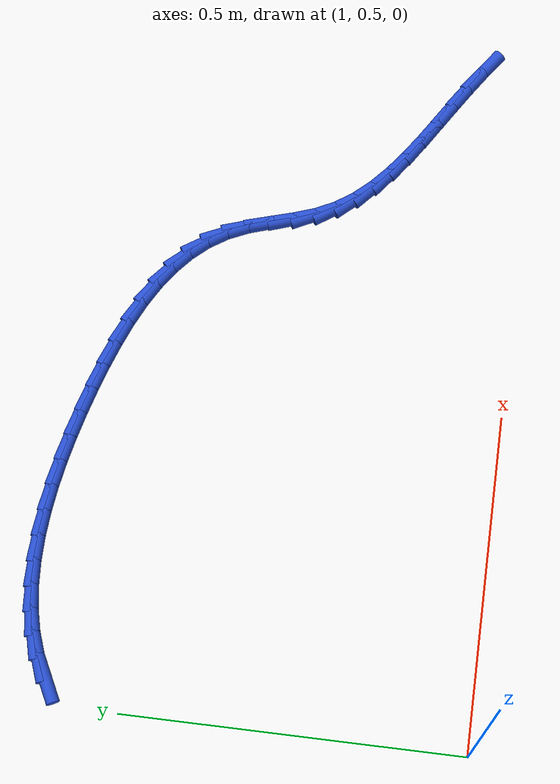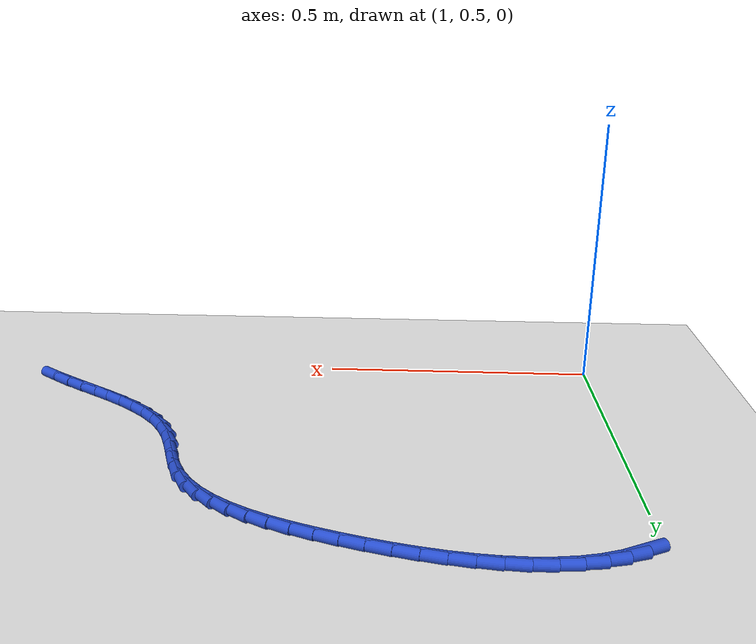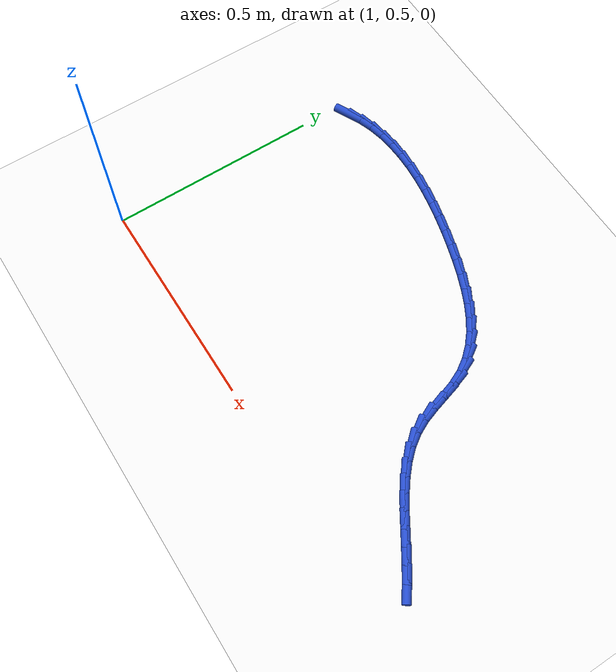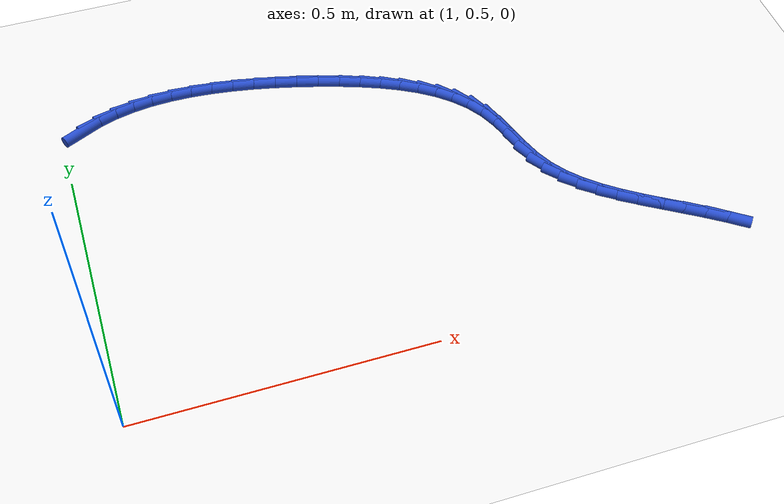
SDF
<sdf version="1.6">
 <world name="default">
  <model name="ground_plane">
   <static>1</static>
   <link name="link">
    <collision name="collision">
     <geometry><plane><normal>0 0 1</normal><size>100 100</size></plane></geometry>
     <surface><friction><ode><mu>100</mu><mu2>50</mu2></ode></friction></surface>
    </collision>
    <visual name="visual">
     <cast_shadows>0</cast_shadows>
     <geometry><plane><normal>0 0 1</normal><size>100 100</size></plane></geometry>
     <material>
      <script><uri>file://media/materials/scripts/gazebo.material</uri><name>Gazebo/WhiteGlow</name></script>
     </material>
    </visual>
   </link>
  </model>
  <model name="line">
   <link name="link_52">
    <pose>1.0387273356943583 1.1097525708473537 0.01 0 1.57 0.454066939665086</pose>
    <collision name="collision">
     <geometry><cylinder><radius>0.01</radius><length>0.08</length></cylinder></geometry>
    </collision>
    <visual name="visual">
     <material>
      <script><name>Gazebo/Blue</name><uri>file://media/materials/scripts/gazebo.material</uri></script>
     </material>
     <geometry><cylinder><radius>0.01</radius><length>0.08</length></cylinder></geometry>
    </visual>
   </link>
   <link name="link_53">
    <pose>1.0682321107557462 1.1241532878704417 0.01 0 1.57 0.3333663685246123</pose>
    <collision name="collision">
     <geometry><cylinder><radius>0.01</radius><length>0.08</length></cylinder></geometry>
    </collision>
    <visual name="visual">
     <material>
      <script><name>Gazebo/Blue</name><uri>file://media/materials/scripts/gazebo.material</uri></script>
     </material>
     <geometry><cylinder><radius>0.01</radius><length>0.08</length></cylinder></geometry>
    </visual>
   </link>
   <link name="link_54">
    <pose>1.099677207550022 1.1350424276009448 0.01 0 1.57 0.22589889558265125</pose>
    <collision name="collision">
     <geometry><cylinder><radius>0.01</radius><length>0.08</length></cylinder></geometry>
    </collision>
    <visual name="visual">
     <material>
      <script><name>Gazebo/Blue</name><uri>file://media/materials/scripts/gazebo.material</uri></script>
     </material>
     <geometry><cylinder><radius>0.01</radius><length>0.08</length></cylinder></geometry>
    </visual>
   </link>
   <link name="link_55">
    <pose>1.1328249305836235 1.1426604886343 0.01 0 1.57 0.1317696983734423</pose>
    <collision name="collision">
     <geometry><cylinder><radius>0.01</radius><length>0.08</length></cylinder></geometry>
    </collision>
    <visual name="visual">
     <material>
      <script><name>Gazebo/Blue</name><uri>file://media/materials/scripts/gazebo.material</uri></script>
     </material>
     <geometry><cylinder><radius>0.01</radius><length>0.08</length></cylinder></geometry>
    </visual>
   </link>
   <link name="link_56">
    <pose>1.1674375843629894 1.1472479695659443 0.01 0 1.57 0.05010882739480579</pose>
    <collision name="collision">
     <geometry><cylinder><radius>0.01</radius><length>0.08</length></cylinder></geometry>
    </collision>
    <visual name="visual">
     <material>
      <script><name>Gazebo/Blue</name><uri>file://media/materials/scripts/gazebo.material</uri></script>
     </material>
     <geometry><cylinder><radius>0.01</radius><length>0.08</length></cylinder></geometry>
    </visual>
   </link>
   <link name="link_57">
    <pose>1.2032774733945566 1.1490453689913158 0.01 0 1.57 -0.02042059715724036</pose>
    <collision name="collision">
     <geometry><cylinder><radius>0.01</radius><length>0.08</length></cylinder></geometry>
    </collision>
    <visual name="visual">
     <material>
      <script><name>Gazebo/Blue</name><uri>file://media/materials/scripts/gazebo.material</uri></script>
     </material>
     <geometry><cylinder><radius>0.01</radius><length>0.08</length></cylinder></geometry>
    </visual>
   </link>
   <link name="link_58">
    <pose>1.240106902184763 1.148293185505851 0.01 0 1.57 -0.08127781698062835</pose>
    <collision name="collision">
     <geometry><cylinder><radius>0.01</radius><length>0.08</length></cylinder></geometry>
    </collision>
    <visual name="visual">
     <material>
      <script><name>Gazebo/Blue</name><uri>file://media/materials/scripts/gazebo.material</uri></script>
     </material>
     <geometry><cylinder><radius>0.01</radius><length>0.08</length></cylinder></geometry>
    </visual>
   </link>
   <link name="link_59">
    <pose>1.2776881752400464 1.1452319177049863 0.01 0 1.57 -0.13385283949703533</pose>
    <collision name="collision">
     <geometry><cylinder><radius>0.01</radius><length>0.08</length></cylinder></geometry>
    </collision>
    <visual name="visual">
     <material>
      <script><name>Gazebo/Blue</name><uri>file://media/materials/scripts/gazebo.material</uri></script>
     </material>
     <geometry><cylinder><radius>0.01</radius><length>0.08</length></cylinder></geometry>
    </visual>
   </link>
   <link name="link_60">
    <pose>1.315783597066845 1.1401020641841608 0.01 0 1.57 -0.17938010526347833</pose>
    <collision name="collision">
     <geometry><cylinder><radius>0.01</radius><length>0.08</length></cylinder></geometry>
    </collision>
    <visual name="visual">
     <material>
      <script><name>Gazebo/Blue</name><uri>file://media/materials/scripts/gazebo.material</uri></script>
     </material>
     <geometry><cylinder><radius>0.01</radius><length>0.08</length></cylinder></geometry>
    </visual>
   </link>
   <link name="link_61">
    <pose>1.354155472171596 1.1331441235388107 0.01 0 1.57 -0.21891288198471182</pose>
    <collision name="collision">
     <geometry><cylinder><radius>0.01</radius><length>0.08</length></cylinder></geometry>
    </collision>
    <visual name="visual">
     <material>
      <script><name>Gazebo/Blue</name><uri>file://media/materials/scripts/gazebo.material</uri></script>
     </material>
     <geometry><cylinder><radius>0.01</radius><length>0.08</length></cylinder></geometry>
    </visual>
   </link>
   <link name="link_62">
    <pose>1.392566105060738 1.1245985943643735 0.01 0 1.57 -0.25332789926904314</pose>
    <collision name="collision">
     <geometry><cylinder><radius>0.01</radius><length>0.08</length></cylinder></geometry>
    </collision>
    <visual name="visual">
     <material>
      <script><name>Gazebo/Blue</name><uri>file://media/materials/scripts/gazebo.material</uri></script>
     </material>
     <geometry><cylinder><radius>0.01</radius><length>0.08</length></cylinder></geometry>
    </visual>
   </link>
   <link name="link_63">
    <pose>1.430777800240709 1.1147059752562862 0.01 0 1.57 -0.28334231485676403</pose>
    <collision name="collision">
     <geometry><cylinder><radius>0.01</radius><length>0.08</length></cylinder></geometry>
    </collision>
    <visual name="visual">
     <material>
      <script><name>Gazebo/Blue</name><uri>file://media/materials/scripts/gazebo.material</uri></script>
     </material>
     <geometry><cylinder><radius>0.01</radius><length>0.08</length></cylinder></geometry>
    </visual>
   </link>
   <link name="link_64">
    <pose>1.4685528622179453 1.1037067648099859 0.01 0 1.57 -0.3106474674529518</pose>
    <collision name="collision">
     <geometry><cylinder><radius>0.01</radius><length>0.08</length></cylinder></geometry>
    </collision>
    <visual name="visual">
     <material>
      <script><name>Gazebo/Blue</name><uri>file://media/materials/scripts/gazebo.material</uri></script>
     </material>
     <geometry><cylinder><radius>0.01</radius><length>0.08</length></cylinder></geometry>
    </visual>
   </link>
   <link name="link_65">
    <pose>1.5056407255639963 1.091800019409108 0.01 0 1.57 -0.34435414498594497</pose>
    <collision name="collision">
     <geometry><cylinder><radius>0.01</radius><length>0.08</length></cylinder></geometry>
    </collision>
    <visual name="visual">
     <material>
      <script><name>Gazebo/Blue</name><uri>file://media/materials/scripts/gazebo.material</uri></script>
     </material>
     <geometry><cylinder><radius>0.01</radius><length>0.08</length></cylinder></geometry>
    </visual>
   </link>
   <link name="link_66">
    <pose>1.541693088263599 1.078870075870632 0.01 0 1.57 -0.38953016940054946</pose>
    <collision name="collision">
     <geometry><cylinder><radius>0.01</radius><length>0.08</length></cylinder></geometry>
    </collision>
    <visual name="visual">
     <material>
      <script><name>Gazebo/Blue</name><uri>file://media/materials/scripts/gazebo.material</uri></script>
     </material>
     <geometry><cylinder><radius>0.01</radius><length>0.08</length></cylinder></geometry>
    </visual>
   </link>
   <link name="link_67">
    <pose>1.5763167959476656 1.0646568428723928 0.01 0 1.57 -0.4478314333096888</pose>
    <collision name="collision">
     <geometry><cylinder><radius>0.01</radius><length>0.08</length></cylinder></geometry>
    </collision>
    <visual name="visual">
     <material>
      <script><name>Gazebo/Blue</name><uri>file://media/materials/scripts/gazebo.material</uri></script>
     </material>
     <geometry><cylinder><radius>0.01</radius><length>0.08</length></cylinder></geometry>
    </visual>
   </link>
   <link name="link_68">
    <pose>1.6091184592589205 1.0488994724116132 0.01 0 1.57 -0.5212265292254914</pose>
    <collision name="collision">
     <geometry><cylinder><radius>0.01</radius><length>0.08</length></cylinder></geometry>
    </collision>
    <visual name="visual">
     <material>
      <script><name>Gazebo/Blue</name><uri>file://media/materials/scripts/gazebo.material</uri></script>
     </material>
     <geometry><cylinder><radius>0.01</radius><length>0.08</length></cylinder></geometry>
    </visual>
   </link>
   <link name="link_69">
    <pose>1.6397046888400895 1.0313371164855163 0.01 0 1.57 -0.6117808025968408</pose>
    <collision name="collision">
     <geometry><cylinder><radius>0.01</radius><length>0.08</length></cylinder></geometry>
    </collision>
    <visual name="visual">
     <material>
      <script><name>Gazebo/Blue</name><uri>file://media/materials/scripts/gazebo.material</uri></script>
     </material>
     <geometry><cylinder><radius>0.01</radius><length>0.08</length></cylinder></geometry>
    </visual>
   </link>
   <link name="link_70">
    <pose>1.6676820953338973 1.0117089270913258 0.01 0 1.57 -0.7211288401781878</pose>
    <collision name="collision">
     <geometry><cylinder><radius>0.01</radius><length>0.08</length></cylinder></geometry>
    </collision>
    <visual name="visual">
     <material>
      <script><name>Gazebo/Blue</name><uri>file://media/materials/scripts/gazebo.material</uri></script>
     </material>
     <geometry><cylinder><radius>0.01</radius><length>0.08</length></cylinder></geometry>
    </visual>
   </link>
   <link name="link_71">
    <pose>1.6926572893830705 0.9897540562262651 0.01 0 1.57 -0.8495485298238307</pose>
    <collision name="collision">
     <geometry><cylinder><radius>0.01</radius><length>0.08</length></cylinder></geometry>
    </collision>
    <visual name="visual">
     <material>
      <script><name>Gazebo/Blue</name><uri>file://media/materials/scripts/gazebo.material</uri></script>
     </material>
     <geometry><cylinder><radius>0.01</radius><length>0.08</length></cylinder></geometry>
    </visual>
   </link>
   <link name="link_72">
    <pose>1.7142368816303333 0.9652116558875574 0.01 0 1.57 -0.9947652110757751</pose>
    <collision name="collision">
     <geometry><cylinder><radius>0.01</radius><length>0.08</length></cylinder></geometry>
    </collision>
    <visual name="visual">
     <material>
      <script><name>Gazebo/Blue</name><uri>file://media/materials/scripts/gazebo.material</uri></script>
     </material>
     <geometry><cylinder><radius>0.01</radius><length>0.08</length></cylinder></geometry>
    </visual>
   </link>
   <link name="link_73">
    <pose>1.7320274827184117 0.9378208780724258 0.01 0 1.57 -1.1483590192458624</pose>
    <collision name="collision">
     <geometry><cylinder><radius>0.01</radius><length>0.08</length></cylinder></geometry>
    </collision>
    <visual name="visual">
     <material>
      <script><name>Gazebo/Blue</name><uri>file://media/materials/scripts/gazebo.material</uri></script>
     </material>
     <geometry><cylinder><radius>0.01</radius><length>0.08</length></cylinder></geometry>
    </visual>
   </link>
   <link name="link_74">
    <pose>1.7457121820063908 0.9073765479667028 0.01 0 1.57 -1.2571825370830179</pose>
    <collision name="collision">
     <geometry><cylinder><radius>0.01</radius><length>0.08</length></cylinder></geometry>
    </collision>
    <visual name="visual">
     <material>
      <script><name>Gazebo/Blue</name><uri>file://media/materials/scripts/gazebo.material</uri></script>
     </material>
     <geometry><cylinder><radius>0.01</radius><length>0.08</length></cylinder></geometry>
    </visual>
   </link>
   <link name="link_75">
    <pose>1.756323955020114 0.8746561493407086 0.01 0 1.57 -1.2872214413375318</pose>
    <collision name="collision">
     <geometry><cylinder><radius>0.01</radius><length>0.08</length></cylinder></geometry>
    </collision>
    <visual name="visual">
     <material>
      <script><name>Gazebo/Blue</name><uri>file://media/materials/scripts/gazebo.material</uri></script>
     </material>
     <geometry><cylinder><radius>0.01</radius><length>0.08</length></cylinder></geometry>
    </visual>
   </link>
   <link name="link_76">
    <pose>1.766051226817946 0.8412782831122939 0.01 0 1.57 -1.2415079099328132</pose>
    <collision name="collision">
     <geometry><cylinder><radius>0.01</radius><length>0.08</length></cylinder></geometry>
    </collision>
    <visual name="visual">
     <material>
      <script><name>Gazebo/Blue</name><uri>file://media/materials/scripts/gazebo.material</uri></script>
     </material>
     <geometry><cylinder><radius>0.01</radius><length>0.08</length></cylinder></geometry>
    </visual>
   </link>
   <link name="link_77">
    <pose>1.7771197187282757 0.8088887002663409 0.01 0 1.57 -1.1185983959548333</pose>
    <collision name="collision">
     <geometry><cylinder><radius>0.01</radius><length>0.08</length></cylinder></geometry>
    </collision>
    <visual name="visual">
     <material>
      <script><name>Gazebo/Blue</name><uri>file://media/materials/scripts/gazebo.material</uri></script>
     </material>
     <geometry><cylinder><radius>0.01</radius><length>0.08</length></cylinder></geometry>
    </visual>
   </link>
   <link name="link_78">
    <pose>1.7916231754490182 0.7790319903389183 0.01 0 1.57 -0.9710162792018229</pose>
    <collision name="collision">
     <geometry><cylinder><radius>0.01</radius><length>0.08</length></cylinder></geometry>
    </collision>
    <visual name="visual">
     <material>
      <script><name>Gazebo/Blue</name><uri>file://media/materials/scripts/gazebo.material</uri></script>
     </material>
     <geometry><cylinder><radius>0.01</radius><length>0.08</length></cylinder></geometry>
    </visual>
   </link>
   <link name="link_79">
    <pose>1.8100780977818884 0.75204376914783 0.01 0 1.57 -0.8433460362601803</pose>
    <collision name="collision">
     <geometry><cylinder><radius>0.01</radius><length>0.08</length></cylinder></geometry>
    </collision>
    <visual name="visual">
     <material>
      <script><name>Gazebo/Blue</name><uri>file://media/materials/scripts/gazebo.material</uri></script>
     </material>
     <geometry><cylinder><radius>0.01</radius><length>0.08</length></cylinder></geometry>
    </visual>
   </link>
   <link name="link_80">
    <pose>1.8319626048095448 0.7274637222106344 0.01 0 1.57 -0.7405579033495228</pose>
    <collision name="collision">
     <geometry><cylinder><radius>0.01</radius><length>0.08</length></cylinder></geometry>
    </collision>
    <visual name="visual">
     <material>
      <script><name>Gazebo/Blue</name><uri>file://media/materials/scripts/gazebo.material</uri></script>
     </material>
     <geometry><cylinder><radius>0.01</radius><length>0.08</length></cylinder></geometry>
    </visual>
   </link>
   <link name="link_81">
    <pose>1.8567365500613018 0.7048175343098104 0.01 0 1.57 -0.6631254928812808</pose>
    <collision name="collision">
     <geometry><cylinder><radius>0.01</radius><length>0.08</length></cylinder></geometry>
    </collision>
    <visual name="visual">
     <material>
      <script><name>Gazebo/Blue</name><uri>file://media/materials/scripts/gazebo.material</uri></script>
     </material>
     <geometry><cylinder><radius>0.01</radius><length>0.08</length></cylinder></geometry>
    </visual>
   </link>
   <link name="link_82">
    <pose>1.8838597870664713 0.683630890227836 0.01 0 1.57 -0.6095360855156553</pose>
    <collision name="collision">
     <geometry><cylinder><radius>0.01</radius><length>0.08</length></cylinder></geometry>
    </collision>
    <visual name="visual">
     <material>
      <script><name>Gazebo/Blue</name><uri>file://media/materials/scripts/gazebo.material</uri></script>
     </material>
     <geometry><cylinder><radius>0.01</radius><length>0.08</length></cylinder></geometry>
    </visual>
   </link>
   <link name="link_83">
    <pose>1.9127921693543666 0.6634294747471904 0.01 0 1.57 -0.5777613614315319</pose>
    <collision name="collision">
     <geometry><cylinder><radius>0.01</radius><length>0.08</length></cylinder></geometry>
    </collision>
    <visual name="visual">
     <material>
      <script><name>Gazebo/Blue</name><uri>file://media/materials/scripts/gazebo.material</uri></script>
     </material>
     <geometry><cylinder><radius>0.01</radius><length>0.08</length></cylinder></geometry>
    </visual>
   </link>
   <link name="link_84">
    <pose>1.9429935504542992 0.6437389726503521 0.01 0 1.57 -0.5660622350923348</pose>
    <collision name="collision">
     <geometry><cylinder><radius>0.01</radius><length>0.08</length></cylinder></geometry>
    </collision>
    <visual name="visual">
     <material>
      <script><name>Gazebo/Blue</name><uri>file://media/materials/scripts/gazebo.material</uri></script>
     </material>
     <geometry><cylinder><radius>0.01</radius><length>0.08</length></cylinder></geometry>
    </visual>
   </link>
   <link name="link_85">
    <pose>1.9739237838955832 0.6240850687197994 0.01 0 1.57 -0.5733038359593209</pose>
    <collision name="collision">
     <geometry><cylinder><radius>0.01</radius><length>0.08</length></cylinder></geometry>
    </collision>
    <visual name="visual">
     <material>
      <script><name>Gazebo/Blue</name><uri>file://media/materials/scripts/gazebo.material</uri></script>
     </material>
     <geometry><cylinder><radius>0.01</radius><length>0.08</length></cylinder></geometry>
    </visual>
   </link>
   <link name="link_86">
    <pose>2.00504272320753 0.6039934477380117 0.01 0 1.57 -0.5975685353124794</pose>
    <collision name="collision">
     <geometry><cylinder><radius>0.01</radius><length>0.08</length></cylinder></geometry>
    </collision>
    <visual name="visual">
     <material>
      <script><name>Gazebo/Blue</name><uri>file://media/materials/scripts/gazebo.material</uri></script>
     </material>
     <geometry><cylinder><radius>0.01</radius><length>0.08</length></cylinder></geometry>
    </visual>
   </link>
   <link name="link_87">
    <pose>2.035822326570745 0.5830456735349788 0.01 0 1.57 -0.6309130049838003</pose>
    <collision name="collision">
     <geometry><cylinder><radius>0.01</radius><length>0.08</length></cylinder></geometry>
    </collision>
    <visual name="visual">
     <material>
      <script><name>Gazebo/Blue</name><uri>file://media/materials/scripts/gazebo.material</uri></script>
     </material>
     <geometry><cylinder><radius>0.01</radius><length>0.08</length></cylinder></geometry>
    </visual>
   </link>
  </model>
 </world>
</sdf>
